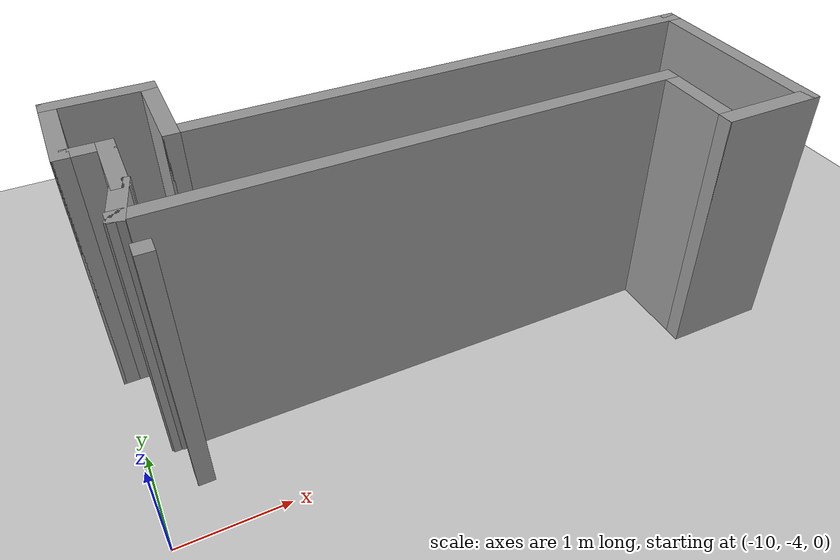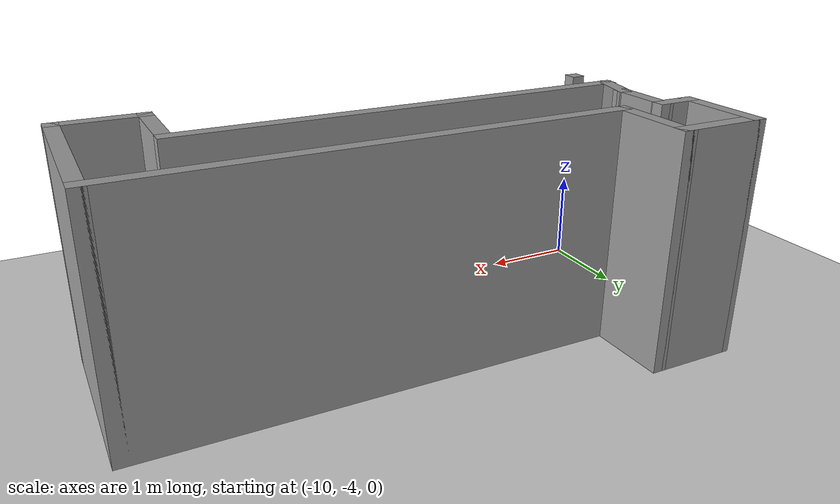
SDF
<sdf version="1.7">
 <world name="default">
  <light name="sun" type="directional">
   <pose>0 0 10 0 -0 0</pose>
   <diffuse>0.8 0.8 0.8 1</diffuse>
   <specular>0.2 0.2 0.2 1</specular>
   <attenuation>
    <range>1000</range>
    <constant>0.9</constant>
    <linear>0.01</linear>
    <quadratic>0.001</quadratic>
   </attenuation>
   <direction>-0.5 0.1 -0.9</direction>
   <spot><inner_angle>0</inner_angle><outer_angle>0</outer_angle><falloff>0</falloff></spot>
  </light>
  <model name="ground_plane">
   <static>1</static>
   <link name="link">
    <collision name="collision">
     <geometry><plane><normal>0 0 1</normal><size>100 100</size></plane></geometry>
     <surface><friction><ode><mu>100</mu><mu2>50</mu2></ode></friction></surface>
    </collision>
    <visual name="visual">
     <cast_shadows>0</cast_shadows>
     <geometry><plane><normal>0 0 1</normal><size>100 100</size></plane></geometry>
     <material>
      <script><uri>file://media/materials/scripts/gazebo.material</uri><name>Gazebo/Grey</name></script>
     </material>
    </visual>
   </link>
  </model>
  <gravity>0 0 -9.8</gravity>
  <magnetic_field>6e-06 2.3e-05 -4.2e-05</magnetic_field>
  <atmosphere type="adiabatic"/>
  <physics type="ode">
   <max_step_size>0.001</max_step_size>
   <real_time_factor>1</real_time_factor>
   <real_time_update_rate>1000</real_time_update_rate>
  </physics>
  <scene><ambient>0.4 0.4 0.4 1</ambient><background>0.7 0.7 0.7 1</background><shadows>1</shadows></scene>
  <audio><device>default</device></audio>
  <spherical_coordinates>
   <surface_model>EARTH_WGS84</surface_model>
   <latitude_deg>0</latitude_deg>
   <longitude_deg>0</longitude_deg>
   <elevation>0</elevation>
   <heading_deg>0</heading_deg>
  </spherical_coordinates>
  <model name="my_bot">
   <link name="base_link">
    <inertial>
     <pose>0.043571 0 0.063571 0 -0 0</pose>
     <mass>0.7</mass>
     <inertia>
      <ixx>0.00492148</ixx>
      <ixy>0</ixy>
      <ixz>-0.00130107</ixz>
      <iyy>0.00914048</iyy>
      <iyz>-2.06792e-21</iyz>
      <izz>0.00856815</izz>
     </inertia>
    </inertial>
    <collision name="base_link_fixed_joint_lump__chassis_link_collision">
     <pose>0.065 0 0.06 0 -0 0</pose>
     <geometry><box><size>0.33 0.225 0.12</size></box></geometry>
    </collision>
    <collision name="base_link_fixed_joint_lump__caster_wheel_link_collision_1">
     <pose>-0.08 0 -0.03 1.5708 -0 0</pose>
     <geometry><cylinder><length>0.018</length><radius>0.02</radius></cylinder></geometry>
     <surface><friction><ode><mu>0.0001</mu><mu2>0.0001</mu2></ode></friction></surface>
    </collision>
    <collision name="base_link_fixed_joint_lump__laser_frame_collision_2">
     <pose>0.06 0 0.175 0 -0 0</pose>
     <geometry><cylinder><length>0.04</length><radius>0.05</radius></cylinder></geometry>
    </collision>
    <visual name="base_link_fixed_joint_lump__chassis_link_visual">
     <pose>0.065 0 0.06 0 -0 0</pose>
     <geometry><box><size>0.33 0.225 0.12</size></box></geometry>
     <material>
      <script><name>Gazebo/Grey</name><uri>file://media/materials/scripts/gazebo.material</uri></script>
     </material>
    </visual>
    <visual name="base_link_fixed_joint_lump__camera_link_visual_1">
     <pose>0.23 -0.0255 0.08 0 -0 0</pose>
     <geometry><box><size>0.01 0.03 0.03</size></box></geometry>
     <material>
      <script><name>Gazebo/Red</name><uri>file://media/materials/scripts/gazebo.material</uri></script>
     </material>
    </visual>
    <visual name="base_link_fixed_joint_lump__caster_wheel_link_visual_2">
     <pose>-0.08 0 -0.03 1.5708 -0 0</pose>
     <geometry><cylinder><length>0.018</length><radius>0.02</radius></cylinder></geometry>
     <material>
      <script><name>Gazebo/Black</name><uri>file://media/materials/scripts/gazebo.material</uri></script>
     </material>
    </visual>
    <visual name="base_link_fixed_joint_lump__laser_frame_visual_3">
     <pose>0.06 0 0.175 0 -0 0</pose>
     <geometry><cylinder><length>0.04</length><radius>0.05</radius></cylinder></geometry>
     <material>
      <script><name>Gazebo/Red</name><uri>file://media/materials/scripts/gazebo.material</uri></script>
     </material>
    </visual>
    <sensor name="camera" type="camera">
     <visualize>0</visualize>
     <update_rate>10</update_rate>
     <camera>
      <horizontal_fov>1.089</horizontal_fov>
      <image><format>R8G8B8</format><width>640</width><height>480</height></image>
      <clip><near>0.05</near><far>8</far></clip>
     </camera>
     <plugin name="camera_controller" filename="libgazebo_ros_camera.so">
      <frame_name>camera_link_optical</frame_name>
     </plugin>
     <pose>0.23 -0.0255 0.08 0 -0 0</pose>
    </sensor>
    <sensor name="laser" type="ray">
     <visualize>0</visualize>
     <update_rate>10</update_rate>
     <ray>
      <scan>
       <horizontal>
        <samples>360</samples>
        <min_angle>-3.14</min_angle>
        <max_angle>3.14</max_angle>
        <resolution>1</resolution>
       </horizontal>
       <vertical><samples>1</samples><min_angle>0</min_angle><max_angle>0</max_angle></vertical>
      </scan>
      <range><min>0.3</min><max>12</max><resolution>0.01</resolution></range>
     </ray>
     <plugin name="laser_controller" filename="libgazebo_ros_ray_sensor.so">
      <ros><argument>~/out:=scan</argument></ros>
      <output_type>sensor_msgs/LaserScan</output_type>
      <frame_name>laser_frame</frame_name>
     </plugin>
     <pose>0.06 0 0.175 0 -0 0</pose>
    </sensor>
   </link>
   <joint name="left_wheel_joint" type="revolute">
    <pose relative_to="base_link">0.188 0.155 0 -1.5708 0 0</pose>
    <parent>base_link</parent>
    <child>left_wheel_link</child>
    <axis>
     <xyz>0 0 1</xyz>
     <limit><effort>0</effort><velocity>0</velocity><lower>-1e+16</lower><upper>1e+16</upper></limit>
     <dynamics><spring_reference>0</spring_reference><spring_stiffness>0</spring_stiffness></dynamics>
    </axis>
   </joint>
   <link name="left_wheel_link">
    <pose relative_to="left_wheel_joint">0 0 0 0 -0 0</pose>
    <inertial>
     <mass>0.1</mass>
     <inertia>
      <ixx>3.76333e-05</ixx>
      <ixy>0</ixy>
      <ixz>0</ixz>
      <iyy>3.76333e-05</iyy>
      <iyz>0</iyz>
      <izz>6.125e-05</izz>
     </inertia>
    </inertial>
    <collision name="left_wheel_link_collision">
     <geometry><cylinder><length>0.029</length><radius>0.035</radius></cylinder></geometry>
    </collision>
    <visual name="left_wheel_link_visual">
     <geometry><cylinder><length>0.029</length><radius>0.035</radius></cylinder></geometry>
     <material>
      <script><name>Gazebo/Blue</name><uri>file://media/materials/scripts/gazebo.material</uri></script>
     </material>
    </visual>
   </link>
   <joint name="right_wheel_joint" type="revolute">
    <pose relative_to="base_link">0.188 -0.155 0 1.5708 -0 0</pose>
    <parent>base_link</parent>
    <child>right_wheel_link</child>
    <axis>
     <xyz>0 0 -1</xyz>
     <limit><effort>0</effort><velocity>0</velocity><lower>-1e+16</lower><upper>1e+16</upper></limit>
     <dynamics><spring_reference>0</spring_reference><spring_stiffness>0</spring_stiffness></dynamics>
    </axis>
   </joint>
   <link name="right_wheel_link">
    <pose relative_to="right_wheel_joint">0 0 0 0 -0 0</pose>
    <inertial>
     <mass>0.1</mass>
     <inertia>
      <ixx>3.12333e-05</ixx>
      <ixy>0</ixy>
      <ixz>0</ixz>
      <iyy>3.12333e-05</iyy>
      <iyz>0</iyz>
      <izz>4.205e-05</izz>
     </inertia>
    </inertial>
    <collision name="right_wheel_link_collision">
     <geometry><cylinder><length>0.029</length><radius>0.035</radius></cylinder></geometry>
    </collision>
    <visual name="right_wheel_link_visual">
     <geometry><cylinder><length>0.029</length><radius>0.035</radius></cylinder></geometry>
     <material>
      <script><name>Gazebo/Blue</name><uri>file://media/materials/scripts/gazebo.material</uri></script>
     </material>
    </visual>
   </link>
   <static>0</static>
   <plugin name="gazebo_ros2_control" filename="libgazebo_ros2_control.so">
    <parameters>/home/acobo/Desktop/ros2_ws/install/my_bot/share/my_bot/config/my_controllers.yaml</parameters>
    <parameters>/home/acobo/Desktop/ros2_ws/install/my_bot/share/my_bot/config/gaz_ros2_ctl_use_sim.yaml</parameters>
   </plugin>
   <pose>-9.37277 -2.44435 0.045488 -3e-05 0.055843 -0.177181</pose>
  </model>
  <model name="Untitled">
   <pose>-4.16325 -1.5437 0 0 -0 0</pose>
   <link name="Wall_0">
    <collision name="Wall_0_Collision">
     <geometry><box><size>1 0.15 2.5</size></box></geometry>
     <pose>0 0 1.25 0 -0 0</pose>
    </collision>
    <visual name="Wall_0_Visual">
     <pose>0 0 1.25 0 -0 0</pose>
     <geometry><box><size>1 0.15 2.5</size></box></geometry>
     <material>
      <script><uri>file://media/materials/scripts/gazebo.material</uri><name>Gazebo/Grey</name></script>
      <ambient>1 1 1 1</ambient>
     </material>
     <meta><layer>0</layer></meta>
    </visual>
    <pose>-5.7775 -0.0075 0 0 -0 -1.5708</pose>
   </link>
   <link name="Wall_1">
    <collision name="Wall_1_Collision">
     <geometry><box><size>0.5 0.15 2.5</size></box></geometry>
     <pose>0 0 1.25 0 -0 0</pose>
    </collision>
    <visual name="Wall_1_Visual">
     <pose>0 0 1.25 0 -0 0</pose>
     <geometry><box><size>0.5 0.15 2.5</size></box></geometry>
     <material>
      <script><uri>file://media/materials/scripts/gazebo.material</uri><name>Gazebo/Grey</name></script>
      <ambient>1 1 1 1</ambient>
     </material>
     <meta><layer>0</layer></meta>
    </visual>
    <pose>-5.6025 -0.4325 0 0 -0 0</pose>
   </link>
   <link name="Wall_10">
    <collision name="Wall_10_Collision">
     <geometry><box><size>0.984877 0.15 2.5</size></box></geometry>
     <pose>0 0 1.25 0 -0 0</pose>
    </collision>
    <visual name="Wall_10_Visual">
     <pose>0 0 1.25 0 -0 0</pose>
     <geometry><box><size>0.984877 0.15 2.5</size></box></geometry>
     <material>
      <script><uri>file://media/materials/scripts/gazebo.material</uri><name>Gazebo/Grey</name></script>
      <ambient>1 1 1 1</ambient>
     </material>
     <meta><layer>0</layer></meta>
    </visual>
    <pose>-0.6775 -1.86506 0 0 -0 1.5708</pose>
   </link>
   <link name="Wall_12">
    <collision name="Wall_12_Collision">
     <geometry><box><size>5 0.15 2.5</size></box></geometry>
     <pose>0 0 1.25 0 -0 0</pose>
    </collision>
    <visual name="Wall_12_Visual">
     <pose>0 0 1.25 0 -0 0</pose>
     <geometry><box><size>5 0.15 2.5</size></box></geometry>
     <material>
      <script><uri>file://media/materials/scripts/gazebo.material</uri><name>Gazebo/Grey</name></script>
      <ambient>1 1 1 1</ambient>
     </material>
     <meta><layer>0</layer></meta>
    </visual>
    <pose>-3.1025 -1.44006 0 0 -0 3.14159</pose>
   </link>
   <link name="Wall_15">
    <collision name="Wall_15_Collision">
     <geometry><box><size>0.15 0.15 2.5</size></box></geometry>
     <pose>0 0 1.25 0 -0 0</pose>
    </collision>
    <visual name="Wall_15_Visual">
     <pose>0 0 1.25 0 -0 0</pose>
     <geometry><box><size>0.15 0.15 2.5</size></box></geometry>
     <material>
      <script><uri>file://media/materials/scripts/gazebo.material</uri><name>Gazebo/Grey</name></script>
      <ambient>1 1 1 1</ambient>
     </material>
     <meta><layer>0</layer></meta>
    </visual>
    <pose>-5.4275 -1.8825 0 0 -0 0</pose>
   </link>
   <link name="Wall_18">
    <collision name="Wall_18_Collision">
     <geometry><box><size>0.56965 0.15 2.5</size></box></geometry>
     <pose>0 0 1.25 0 -0 0</pose>
    </collision>
    <visual name="Wall_18_Visual">
     <pose>0 0 1.25 0 -0 0</pose>
     <geometry><box><size>0.56965 0.15 2.5</size></box></geometry>
     <material>
      <script><uri>file://media/materials/scripts/gazebo.material</uri><name>Gazebo/Grey</name></script>
      <ambient>1 1 1 1</ambient>
     </material>
     <meta><layer>0</layer></meta>
    </visual>
    <pose>-5.4775 -1.23628 0 0 -0 -1.8114</pose>
   </link>
   <link name="Wall_2">
    <collision name="Wall_2_Collision">
     <geometry><box><size>0.75 0.15 2.5</size></box></geometry>
     <pose>0 0 1.25 0 -0 0</pose>
    </collision>
    <visual name="Wall_2_Visual">
     <pose>0 0 1.25 0 -0 0</pose>
     <geometry><box><size>0.75 0.15 2.5</size></box></geometry>
     <material>
      <script><uri>file://media/materials/scripts/gazebo.material</uri><name>Gazebo/Grey</name></script>
      <ambient>1 1 1 1</ambient>
     </material>
     <meta><layer>0</layer></meta>
    </visual>
    <pose>-5.4275 -0.7325 0 0 -0 -1.5708</pose>
   </link>
   <link name="Wall_5">
    <collision name="Wall_5_Collision">
     <geometry><box><size>1 0.15 2.5</size></box></geometry>
     <pose>0 0 1.25 0 -0 0</pose>
    </collision>
    <visual name="Wall_5_Visual">
     <pose>0 0 1.25 0 -0 0</pose>
     <geometry><box><size>1 0.15 2.5</size></box></geometry>
     <material>
      <script><uri>file://media/materials/scripts/gazebo.material</uri><name>Gazebo/Grey</name></script>
      <ambient>1 1 1 1</ambient>
     </material>
     <meta><layer>0</layer></meta>
    </visual>
    <pose>-5.3525 0.4175 0 0 -0 0</pose>
   </link>
   <link name="Wall_6">
    <collision name="Wall_6_Collision">
     <geometry><box><size>1 0.15 2.5</size></box></geometry>
     <pose>0 0 1.25 0 -0 0</pose>
    </collision>
    <visual name="Wall_6_Visual">
     <pose>0 0 1.25 0 -0 0</pose>
     <geometry><box><size>1 0.15 2.5</size></box></geometry>
     <material>
      <script><uri>file://media/materials/scripts/gazebo.material</uri><name>Gazebo/Grey</name></script>
      <ambient>1 1 1 1</ambient>
     </material>
     <meta><layer>0</layer></meta>
    </visual>
    <pose>-4.9275 -0.0075 0 0 -0 -1.5708</pose>
   </link>
   <link name="Wall_7">
    <collision name="Wall_7_Collision">
     <geometry><box><size>5.25 0.15 2.5</size></box></geometry>
     <pose>0 0 1.25 0 -0 0</pose>
    </collision>
    <visual name="Wall_7_Visual">
     <pose>0 0 1.25 0 -0 0</pose>
     <geometry><box><size>5.25 0.15 2.5</size></box></geometry>
     <material>
      <script><uri>file://media/materials/scripts/gazebo.material</uri><name>Gazebo/Grey</name></script>
      <ambient>1 1 1 1</ambient>
     </material>
     <meta><layer>0</layer></meta>
    </visual>
    <pose>-2.3775 -0.4325 0 0 -0 0</pose>
   </link>
   <link name="Wall_8">
    <collision name="Wall_8_Collision">
     <geometry><box><size>2 0.15 2.5</size></box></geometry>
     <pose>0 0 1.25 0 -0 0</pose>
    </collision>
    <visual name="Wall_8_Visual">
     <pose>0 0 1.25 0 -0 0</pose>
     <geometry><box><size>2 0.15 2.5</size></box></geometry>
     <material>
      <script><uri>file://media/materials/scripts/gazebo.material</uri><name>Gazebo/Grey</name></script>
      <ambient>1 1 1 1</ambient>
     </material>
     <meta><layer>0</layer></meta>
    </visual>
    <pose>0.1725 -1.3575 0 0 -0 -1.5708</pose>
   </link>
   <link name="Wall_9">
    <collision name="Wall_9_Collision">
     <geometry><box><size>1 0.15 2.5</size></box></geometry>
     <pose>0 0 1.25 0 -0 0</pose>
    </collision>
    <visual name="Wall_9_Visual">
     <pose>0 0 1.25 0 -0 0</pose>
     <geometry><box><size>1 0.15 2.5</size></box></geometry>
     <material>
      <script><uri>file://media/materials/scripts/gazebo.material</uri><name>Gazebo/Grey</name></script>
      <ambient>1 1 1 1</ambient>
     </material>
     <meta><layer>0</layer></meta>
    </visual>
    <pose>-0.2525 -2.2825 0 0 -0 3.14159</pose>
   </link>
   <static>1</static>
  </model>
 </world>
</sdf>
